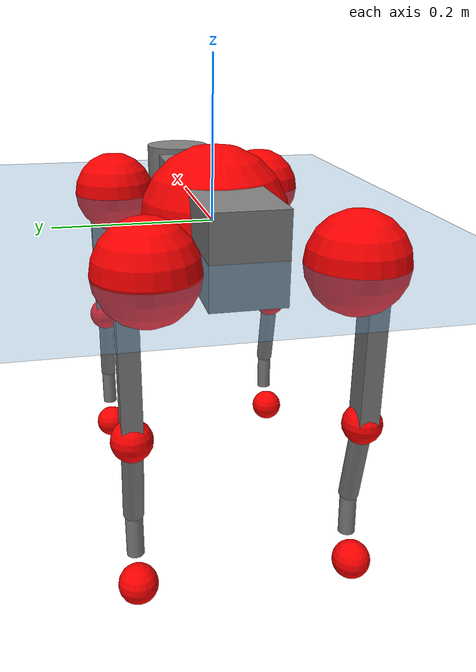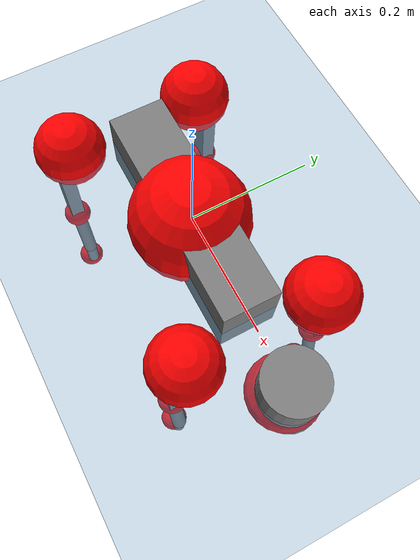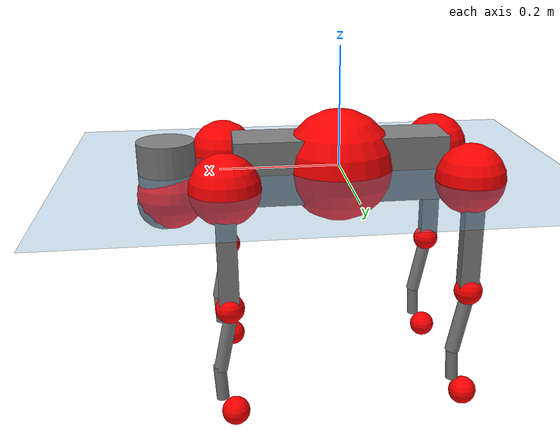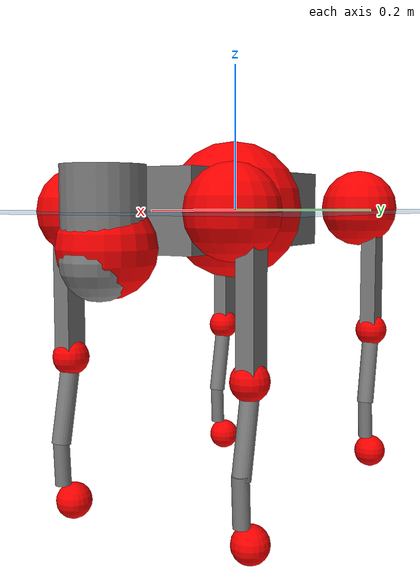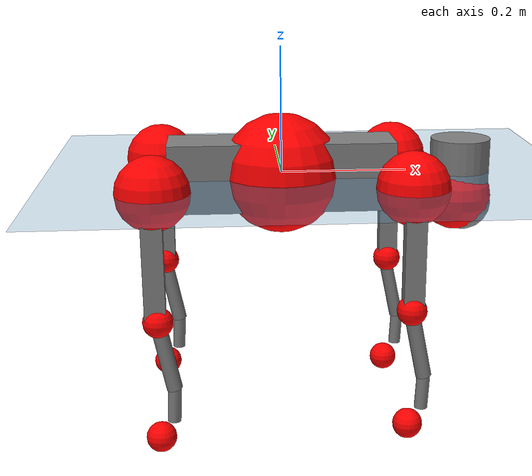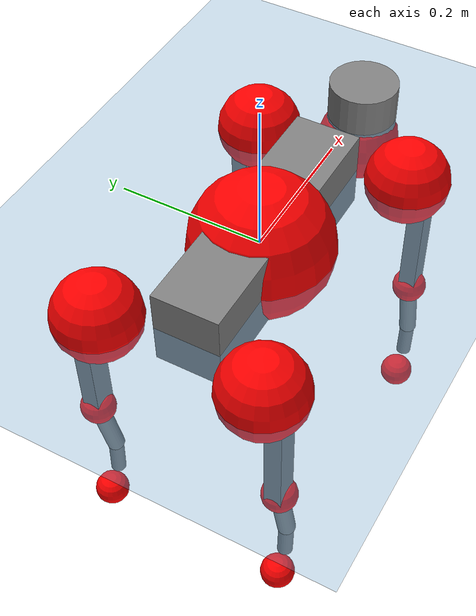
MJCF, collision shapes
<mujoco model="go2">
  <compiler angle="radian" assetdir="assets" balanceinertia="true" inertiafromgeom="false"/>

  <option timestep="0.005" density="1.2" viscosity="2e-05"/>

  <size nkey="1"/>

  <visual>
    <quality shadowsize="8192"/>
    <map shadowclip="0.5"/>
  </visual>

  <default>
    <default class="/">
      <geom contype="0" conaffinity="0" group="1" solref="-1000 -80"/>
      <site size="0.01 0.005 0.005" group="5"/>
      <general forcelimited="true" biastype="affine" gainprm="20" biasprm="0 -20 -0.5"/>
      <default class="go2">
        <joint armature="0.01" damping="0.01" frictionloss="0.2"/>
        <geom condim="1" margin="0.001"/>
        <default class="visual">
          <geom type="mesh" group="2"/>
        </default>
        <default class="collision">
          <geom group="3"/>
          <default class="foot">
            <geom size="0.022 0 0" condim="6" priority="1" friction="0.8 0.02 0.01" solimp="0.015 1 0.022"/>
          </default>
        </default>
        <default class="reward_collision_sphere">
          <geom group="5" rgba="1 0 0 1"/>
        </default>
      </default>
    </default>
  </default>

  <asset>
    <texture type="skybox" colorspace="auto" name="//unnamed_texture_0" builtin="gradient" rgb1="0.95 0.95 0.95" rgb2="0.95 0.95 0.95" width="100" height="600"/>
    <texture type="2d" colorspace="auto" name="texplane" builtin="checker" rgb1="0.345 0.575 0.748" rgb2="0.345 0.575 0.748" markrgb="1 1 1" width="512" height="512"/>
    <material name="MatPlane" class="/" texture="texplane" texuniform="true" texrepeat="2 2" specular="0.9"/>
    <material name="metal" class="/" rgba="0.9 0.95 0.95 1"/>
    <material name="black" class="/" rgba="0 0 0 1"/>
    <material name="white" class="/"/>
    <material name="gray" class="/" rgba="0.671705 0.692426 0.77427 1"/>
    <mesh name="base_0" class="/" file="base_0.obj"/>
    <mesh name="base_1" class="/" file="base_1.obj"/>
    <mesh name="base_2" class="/" file="base_2.obj"/>
    <mesh name="base_3" class="/" file="base_3.obj"/>
    <mesh name="base_4" class="/" file="base_4.obj"/>
    <mesh name="hip_0" class="/" file="hip_0.obj"/>
    <mesh name="hip_1" class="/" file="hip_1.obj"/>
    <mesh name="thigh_0" class="/" file="thigh_0.obj"/>
    <mesh name="thigh_1" class="/" file="thigh_1.obj"/>
    <mesh name="thigh_mirror_0" class="/" file="thigh_mirror_0.obj"/>
    <mesh name="thigh_mirror_1" class="/" file="thigh_mirror_1.obj"/>
    <mesh name="calf_0" class="/" file="calf_0.obj"/>
    <mesh name="calf_1" class="/" file="calf_1.obj"/>
    <mesh name="calf_mirror_0" class="/" file="calf_mirror_0.obj"/>
    <mesh name="calf_mirror_1" class="/" file="calf_mirror_1.obj"/>
    <mesh name="foot" class="/" file="foot.obj"/>
  </asset>

  <worldbody>
    <geom name="floor" class="/" size="100 100 0.125" type="plane" group="0" material="MatPlane"/>
    <light name="toplight_shadow" class="/" pos="0 0 5" dir="0.0990148 0.0990148 -0.990148" type="directional" ambient="0.04 0.04 0.04" diffuse="0.55 0.55 0.55" specular="0.12 0.12 0.12"/>
    <light name="toplight_fill" class="/" pos="0 0 5" dir="0.0990148 0.0990148 -0.990148" type="directional" castshadow="false" ambient="0.04 0.04 0.04" diffuse="0.3 0.3 0.3" specular="0.08 0.08 0.08"/>
    <body name="trunk" childclass="go2" pos="-0.000550762 -0.00249432 1.98478e-05" quat="0.999999 -0.000946395 0.000553213 0.00061315">
      <inertial pos="0.0193953 -0.00230676 -0.00227565" quat="0.00220678 0.711092 0.00686019 0.703062" mass="5.99907" diaginertia="0.107385 0.0693429 0.0150933"/>
      <joint name="//unnamed_joint_0" type="free" armature="0" damping="0" frictionloss="0"/>
      <geom name="//unnamed_geom_1" class="visual" material="black" mesh="base_0"/>
      <geom name="//unnamed_geom_2" class="visual" material="black" mesh="base_1"/>
      <geom name="//unnamed_geom_3" class="visual" material="black" mesh="base_2"/>
      <geom name="//unnamed_geom_4" class="visual" material="white" mesh="base_3"/>
      <geom name="//unnamed_geom_5" class="visual" material="gray" mesh="base_4"/>
      <geom name="trunk_1" class="collision" size="0.179255 0.0445517 0.0543197" type="box"/>
      <geom name="trunk_2" class="collision" size="0.0476489 0.042884" pos="0.288661 0 0.0090753" type="cylinder"/>
      <geom name="trunk_3" class="collision" size="0.04479" pos="0.296764 0 -0.0544518"/>
      <geom name="//unnamed_geom_9" class="reward_collision_sphere" size="0.0952978"/>
      <geom name="//unnamed_geom_10" class="reward_collision_sphere" size="0.0571787" pos="0.283597 0 -0.0408389"/>
      <site name="imu" pos="-0.0216973 -0.00107444 0.0374173" size="0.00952978"/>
      <camera name="track" pos="0 -1.87712 0" quat="0.707107 0.707107 0 0" mode="trackcom"/>
      <camera name="ego_camera" pos="0.316008 0 0.0408389" quat="-0.5 -0.5 0.5 0.5"/>
      <body name="FL_hip" pos="0.19561 0.0446702 -0.000145122" quat="1 4.98323e-05 0.000236933 1.38522e-05">
        <inertial pos="-0.00566776 -0.000748476 -0.00064944" quat="0.495369 0.496196 0.502028 0.506327" mass="0.583523" diaginertia="0.000936065 0.000422129 0.000292253"/>
        <joint name="FL_hip_joint" pos="0 0 0" axis="0.999927 -0.0004694 0.0120535" stiffness="0.0135985" range="-1.08485 1.07006" armature="0.00946775" damping="0" frictionloss="0.186872"/>
        <geom name="//unnamed_geom_11" class="visual" material="metal" mesh="hip_0"/>
        <geom name="//unnamed_geom_12" class="visual" material="gray" mesh="hip_1"/>
        <geom name="//unnamed_geom_13" class="collision" size="0.043837 0.0190596" pos="0 0.0750846 0" quat="0.707107 0.707107 0 0" type="cylinder"/>
        <geom name="//unnamed_geom_14" class="reward_collision_sphere" size="0.0571787" pos="0 0.0656991 0"/>
        <body name="FL_thigh" pos="0.00185312 0.0911882 -0.000323042" quat="0.999999 -0.000244634 0.000601219 -0.000966925">
          <inertial pos="-0.00404166 -0.0187288 -0.0286096" quat="0.827742 0.0875809 -0.0195175 0.553888" mass="1.02449" diaginertia="0.00615572 0.00440439 0.000543061"/>
          <joint name="FL_thigh_joint" pos="0 0 0" axis="0.00798409 0.999872 -0.0138622" stiffness="0.0103327" range="-1.62011 3.43793" armature="0.010575" damping="0" frictionloss="0.171764"/>
          <geom name="//unnamed_geom_15" class="visual" material="metal" mesh="thigh_0"/>
          <geom name="//unnamed_geom_16" class="visual" material="gray" mesh="thigh_1"/>
          <geom name="//unnamed_geom_17" class="collision" size="0.101492 0.011674 0.0162006" pos="0 0 -0.096652" quat="0.707107 0 0.707107 0" type="box"/>
          <body name="FL_calf" pos="-0.000532595 -0.00191902 -0.192498" quat="1 -0.000128691 3.73622e-05 5.53071e-05">
            <inertial pos="0.00366987 -0.00274545 -0.130581" quat="0.711605 0.00302427 -0.00357802 0.702565" mass="0.203502" diaginertia="0.00154161 0.00106863 3.20892e-05"/>
            <joint name="FL_calf_joint" pos="0 0 0" axis="-0.0114618 0.999924 0.00453693" stiffness="0.0135521" range="-2.68062 -0.781811" armature="0.00853801" damping="0" frictionloss="0.192237"/>
            <geom name="//unnamed_geom_18" class="visual" material="gray" mesh="calf_0"/>
            <geom name="//unnamed_geom_19" class="visual" material="black" mesh="calf_1"/>
            <geom name="FL_calf0" class="collision" size="0.0114357 0.0571787" pos="0.00810277 0 -0.0544518" quat="0.994493 0 -0.104807 0" type="cylinder"/>
            <geom name="//unnamed_geom_21" class="collision" size="0.0104828 0.0309718" pos="0.0202569 0 -0.134314" quat="0.999688 0 0.0249974 0" type="cylinder"/>
            <geom name="//unnamed_geom_22" class="visual" pos="0 0 -0.193304" quat="1 0 0 0" material="black" mesh="foot"/>
            <geom name="FL_foot" class="foot" size="0.0165359" pos="-0.00202569 0 -0.193304"/>
            <geom name="//unnamed_geom_24" class="reward_collision_sphere" size="0.0238245"/>
            <geom name="//unnamed_geom_25" class="reward_collision_sphere" size="0.0238245" pos="-0.00202569 0 -0.193304"/>
            <site name="FL_foot" class="foot" pos="-0.00202569 0 -0.193304" size="0.00952978"/>
          </body>
        </body>
      </body>
      <body name="FR_hip" pos="0.193793 -0.0448734 -0.00156689" quat="1 0.000117396 -0.000659195 0.000148406">
        <inertial pos="-0.00432731 -0.00113696 -0.000351418" quat="0.509256 0.503377 0.491972 0.495211" mass="0.585983" diaginertia="0.00091744 0.000434178 0.000298744"/>
        <joint name="FR_hip_joint" pos="0 0 0" axis="0.999947 0.000896533 0.0102219" range="-1.06948 1.1061" armature="0.00892328" damping="0.00469531" frictionloss="0.188164"/>
        <geom name="//unnamed_geom_26" class="visual" pos="0 2.70302e-10 1.15938e-08" quat="4.63268e-05 1 0 0" material="metal" mesh="hip_0"/>
        <geom name="//unnamed_geom_27" class="visual" pos="0 4.38192e-10 -2.86759e-08" quat="4.63268e-05 1 0 0" material="gray" mesh="hip_1"/>
        <geom name="//unnamed_geom_28" class="collision" size="0.043837 0.0190596" pos="0 -0.0750846 0" quat="0.707107 0.707107 0 0" type="cylinder"/>
        <geom name="//unnamed_geom_29" class="reward_collision_sphere" size="0.0571787" pos="0 -0.0656991 0"/>
        <body name="FR_thigh" pos="0.000476507 -0.0892213 0.000797885" quat="1 -6.71937e-05 1.00041e-05 1.40448e-05">
          <inertial pos="-0.00177727 0.0187372 -0.0270639" quat="0.552552 -0.0211354 0.0860476 0.828755" mass="0.998467" diaginertia="0.00616858 0.0042702 0.000543043"/>
          <joint name="FR_thigh_joint" pos="0 0 0" axis="0.00257931 -0.999997 0.000466135" stiffness="0.00896934" range="-3.49607 1.57241" armature="0.00833803" damping="0.0264203" frictionloss="0.168993"/>
          <geom name="//unnamed_geom_30" class="visual" material="metal" mesh="thigh_mirror_0"/>
          <geom name="//unnamed_geom_31" class="visual" material="gray" mesh="thigh_mirror_1"/>
          <geom name="//unnamed_geom_32" class="collision" size="0.101492 0.011674 0.0162006" pos="0 0 -0.096652" quat="0.707107 0 0.707107 0" type="box"/>
          <body name="FR_calf" pos="-0.00128091 6.01554e-05 -0.18973" quat="1 -0.00028711 -0.000287148 -0.000119365">
            <inertial pos="0.00408903 0.00316012 -0.128398" quat="0.702788 -0.00506684 0.00632154 0.711353" mass="0.215041" diaginertia="0.00161835 0.00113172 3.27002e-05"/>
            <joint name="FR_calf_joint" pos="0 0 0" axis="0.00862587 -0.999963 0.000692891" stiffness="0.00133234" range="0.8352 2.71436" armature="0.0100345" damping="0" frictionloss="0.18546"/>
            <geom name="//unnamed_geom_33" class="visual" material="gray" mesh="calf_mirror_0"/>
            <geom name="//unnamed_geom_34" class="visual" material="black" mesh="calf_mirror_1"/>
            <geom name="FR_calf0" class="collision" size="0.0123887 0.0571787" pos="0.0101285 0 -0.0544518" quat="0.995004 0 -0.0998334 0" type="cylinder"/>
            <geom name="//unnamed_geom_36" class="collision" size="0.0104828 0.0309718" pos="0.0202569 0 -0.134314" quat="0.999688 0 0.0249974 0" type="cylinder"/>
            <geom name="//unnamed_geom_37" class="visual" pos="0 0 -0.193304" quat="1 0 0 0" material="black" mesh="foot"/>
            <geom name="FR_foot" class="foot" size="0.0199451" pos="-0.00202569 0 -0.193304"/>
            <geom name="//unnamed_geom_39" class="reward_collision_sphere" size="0.0238245"/>
            <geom name="//unnamed_geom_40" class="reward_collision_sphere" size="0.0238245" pos="-0.00202569 0 -0.193304"/>
            <site name="FR_foot" class="foot" pos="-0.00202569 0 -0.193304" size="0.00952978"/>
          </body>
        </body>
      </body>
      <body name="RL_hip" pos="-0.195773 0.045161 0.00153084" quat="1 -0.000194955 0.000244971 8.7793e-05">
        <inertial pos="0.00462394 0.00306815 0.00248001" quat="0.507721 0.496578 0.495177 0.50043" mass="0.565994" diaginertia="0.000944847 0.000421646 0.000300176"/>
        <joint name="RL_hip_joint" pos="0 0 0" axis="-0.999933 0.0112289 -0.00283853" stiffness="0.0123493" range="-0.993115 1.03248" armature="0.0099308" damping="0.0110194" frictionloss="0.216873"/>
        <geom name="//unnamed_geom_41" class="visual" pos="-9.1747e-10 0 -1.79845e-07" quat="4.63268e-05 0 1 0" material="metal" mesh="hip_0"/>
        <geom name="//unnamed_geom_42" class="visual" pos="-1.48733e-09 0 -1.59497e-07" quat="4.63268e-05 0 1 0" material="gray" mesh="hip_1"/>
        <geom name="//unnamed_geom_43" class="collision" size="0.043837 0.0190596" pos="0 0.0750846 0" quat="0.707107 0.707107 0 0" type="cylinder"/>
        <geom name="//unnamed_geom_44" class="reward_collision_sphere" size="0.0571787" pos="0 0.0656991 0"/>
        <body name="RL_thigh" pos="-0.000331316 0.0878526 0.00240123" quat="0.999999 0.000166898 0.000352598 0.00129302">
          <inertial pos="-0.0034834 -0.0189115 -0.0290111" quat="0.825813 0.0787292 -0.0302296 0.557603" mass="0.966321" diaginertia="0.00618432 0.0043573 0.000558943"/>
          <joint name="RL_thigh_joint" pos="0 0 0" axis="0.00848176 0.999961 0.00227072" stiffness="0.00460104" range="-0.501934 4.53572" armature="0.0107088" damping="0.0236472" frictionloss="0.171895"/>
          <geom name="//unnamed_geom_45" class="visual" material="metal" mesh="thigh_0"/>
          <geom name="//unnamed_geom_46" class="visual" material="gray" mesh="thigh_1"/>
          <geom name="//unnamed_geom_47" class="collision" size="0.101492 0.011674 0.0162006" pos="0 0 -0.096652" quat="0.707107 0 0.707107 0" type="box"/>
          <body name="RL_calf" pos="-0.00201459 -1.62563e-05 -0.191035" quat="1 0.000442509 0.000853112 0.000260021">
            <inertial pos="0.00675715 0.00230001 -0.127409" quat="0.711464 0.000382649 -0.00538325 0.702701" mass="0.206268" diaginertia="0.00151529 0.0010163 3.11591e-05"/>
            <joint name="RL_calf_joint" pos="0 0 0" axis="0.00109699 0.999894 0.0145186" stiffness="0.0116547" range="-2.67567 -0.825753" armature="0.0105752" damping="0.0115271" frictionloss="0.168024"/>
            <geom name="//unnamed_geom_48" class="visual" material="gray" mesh="calf_0"/>
            <geom name="//unnamed_geom_49" class="visual" material="black" mesh="calf_1"/>
            <geom name="RL_calf0" class="collision" size="0.0123887 0.0571787" pos="0.0101285 0 -0.0544518" quat="0.995004 0 -0.0998334 0" type="cylinder"/>
            <geom name="//unnamed_geom_51" class="collision" size="0.0104828 0.0309718" pos="0.0202569 0 -0.134314" quat="0.999688 0 0.0249974 0" type="cylinder"/>
            <geom name="//unnamed_geom_52" class="visual" pos="0 0 -0.193304" quat="1 0 0 0" material="black" mesh="foot"/>
            <geom name="RL_foot" class="foot" size="0.0178371" pos="-0.00202569 0 -0.193304"/>
            <geom name="//unnamed_geom_54" class="reward_collision_sphere" size="0.0238245"/>
            <geom name="//unnamed_geom_55" class="reward_collision_sphere" size="0.0238245" pos="-0.00202569 0 -0.193304"/>
            <site name="RL_foot" class="foot" pos="-0.00202569 0 -0.193304" size="0.00952978"/>
          </body>
        </body>
      </body>
      <body name="RR_hip" pos="-0.198223 -0.044942 -0.0017115" quat="1 -0.000918012 0.000188749 0.000170326">
        <inertial pos="0.00501968 -0.00167625 0.000459152" quat="0.497641 0.497267 0.499947 0.505106" mass="0.575329" diaginertia="0.000924324 0.000425161 0.000296562"/>
        <joint name="RR_hip_joint" pos="0 0 0" axis="-0.999999 0.00130725 0.000693852" stiffness="0.0108954" range="-1.02707 1.0973" armature="0.0108104" damping="0.00703003" frictionloss="0.211996"/>
        <geom name="//unnamed_geom_56" class="visual" pos="9.14897e-10 2.70302e-10 -1.91439e-07" quat="2.14617e-09 4.63268e-05 4.63268e-05 -1" material="metal" mesh="hip_0"/>
        <geom name="//unnamed_geom_57" class="visual" pos="1.49369e-09 4.38192e-10 -1.30821e-07" quat="2.14617e-09 4.63268e-05 4.63268e-05 -1" material="gray" mesh="hip_1"/>
        <geom name="//unnamed_geom_58" class="collision" size="0.043837 0.0190596" pos="0 -0.0750846 0" quat="0.707107 0.707107 0 0" type="cylinder"/>
        <geom name="//unnamed_geom_59" class="reward_collision_sphere" size="0.0571787" pos="0 -0.0656991 0"/>
        <body name="RR_thigh" pos="-0.00214109 -0.0874621 -0.00257937" quat="1 -0.000229225 -3.87741e-05 4.91066e-05">
          <inertial pos="-0.00376625 0.0183225 -0.0300671" quat="0.550452 -0.0157729 0.0819828 0.830682" mass="0.986576" diaginertia="0.00635598 0.00422577 0.000519674"/>
          <joint name="RR_thigh_joint" pos="0 0 0" axis="-0.00393006 -0.999986 -0.00346086" stiffness="0.0114593" range="-4.54058 0.56702" armature="0.00839136" damping="0.0253885" frictionloss="0.194964"/>
          <geom name="//unnamed_geom_60" class="visual" material="metal" mesh="thigh_mirror_0"/>
          <geom name="//unnamed_geom_61" class="visual" material="gray" mesh="thigh_mirror_1"/>
          <geom name="//unnamed_geom_62" class="collision" size="0.101492 0.011674 0.0162006" pos="0 0 -0.096652" quat="0.707107 0 0.707107 0" type="box"/>
          <body name="RR_calf" pos="0.00346379 1.02205e-05 -0.193932" quat="1 -4.06419e-05 -6.3583e-05 -0.000459251">
            <inertial pos="0.0043001 -0.000395593 -0.127947" quat="0.703143 -0.00481316 0.000952286 0.711031" mass="0.214698" diaginertia="0.00157848 0.00108273 3.29329e-05"/>
            <joint name="RR_calf_joint" pos="0 0 0" axis="-0.000254654 -0.999964 -0.00853919" range="0.89052 2.75532" armature="0.00985043" damping="0.0160581" frictionloss="0.208801"/>
            <geom name="//unnamed_geom_63" class="visual" material="gray" mesh="calf_mirror_0"/>
            <geom name="//unnamed_geom_64" class="visual" material="black" mesh="calf_mirror_1"/>
            <geom name="RR_calf0" class="collision" size="0.0123887 0.0571787" pos="0.0101285 0 -0.0544518" quat="0.995004 0 -0.0998334 0" type="cylinder"/>
            <geom name="//unnamed_geom_66" class="collision" size="0.0104828 0.0309718" pos="0.0202569 0 -0.134314" quat="0.999688 0 0.0249974 0" type="cylinder"/>
            <geom name="//unnamed_geom_67" class="visual" pos="0 0 -0.193304" quat="1 0 0 0" material="black" mesh="foot"/>
            <geom name="RR_foot" class="foot" size="0.0231644" pos="-0.00202569 0 -0.193304"/>
            <geom name="//unnamed_geom_69" class="reward_collision_sphere" size="0.0238245"/>
            <geom name="//unnamed_geom_70" class="reward_collision_sphere" size="0.0238245" pos="-0.00202569 0 -0.193304"/>
            <site name="RR_foot" class="foot" pos="-0.00202569 0 -0.193304" size="0.00952978"/>
          </body>
        </body>
      </body>
    </body>
  </worldbody>

  <contact>
    <pair class="/" geom1="floor" geom2="FL_foot" name="//unnamed_contact_0"/>
    <pair class="/" geom1="floor" geom2="FR_foot" name="//unnamed_contact_1"/>
    <pair class="/" geom1="floor" geom2="RL_foot" name="//unnamed_contact_2"/>
    <pair class="/" geom1="floor" geom2="RR_foot" name="//unnamed_contact_3"/>
  </contact>

  <actuator>
    <general name="FL_hip" class="/" joint="FL_hip_joint" forcerange="-23.7157 23.7157" gainprm="18.996" biasprm="0 -18.996 -0.475518"/>
    <general name="FL_thigh" class="/" joint="FL_thigh_joint" forcerange="-22.4668 22.4668" gainprm="18.996" biasprm="0 -18.996 -0.475518"/>
    <general name="FL_calf" class="/" joint="FL_calf_joint" forcerange="-43.0977 43.0977" gainprm="18.996" biasprm="0 -18.996 -0.475518"/>
    <general name="FR_hip" class="/" joint="FR_hip_joint" forcerange="-21.1344 21.1344" gainprm="18.996" biasprm="0 -18.996 -0.475518"/>
    <general name="FR_thigh" class="/" joint="FR_thigh_joint" forcerange="-22.3777 22.3777" gainprm="18.996" biasprm="0 -18.996 -0.475518"/>
    <general name="FR_calf" class="/" joint="FR_calf_joint" forcerange="-38.6152 38.6152" gainprm="18.996" biasprm="0 -18.996 -0.475518"/>
    <general name="RL_hip" class="/" joint="RL_hip_joint" forcerange="-22.413 22.413" gainprm="18.996" biasprm="0 -18.996 -0.475518"/>
    <general name="RL_thigh" class="/" joint="RL_thigh_joint" forcerange="-22.2111 22.2111" gainprm="18.996" biasprm="0 -18.996 -0.475518"/>
    <general name="RL_calf" class="/" joint="RL_calf_joint" forcerange="-43.2022 43.2022" gainprm="18.996" biasprm="0 -18.996 -0.475518"/>
    <general name="RR_hip" class="/" joint="RR_hip_joint" forcerange="-21.3097 21.3097" gainprm="18.996" biasprm="0 -18.996 -0.475518"/>
    <general name="RR_thigh" class="/" joint="RR_thigh_joint" forcerange="-23.0362 23.0362" gainprm="18.996" biasprm="0 -18.996 -0.475518"/>
    <general name="RR_calf" class="/" joint="RR_calf_joint" forcerange="-47.6554 47.6554" gainprm="18.996" biasprm="0 -18.996 -0.475518"/>
  </actuator>

  <sensor>
    <gyro site="imu" name="imu_angular_velocity"/>
    <velocimeter site="imu" name="imu_linear_velocity"/>
    <framelinvel objtype="site" objname="FL_foot" name="FL_foot_global_linear_velocity"/>
    <framelinvel objtype="site" objname="FR_foot" name="FR_foot_global_linear_velocity"/>
    <framelinvel objtype="site" objname="RL_foot" name="RL_foot_global_linear_velocity"/>
    <framelinvel objtype="site" objname="RR_foot" name="RR_foot_global_linear_velocity"/>
  </sensor>

  <keyframe>
    <key name="home" qpos="0 0 0.325 1 0 0 0 0.1 0.8 -1.5 -0.1 -0.8 1.5 -0.1 0.8 -1.5 0.1 -0.8 1.5"/>
  </keyframe>
</mujoco>
